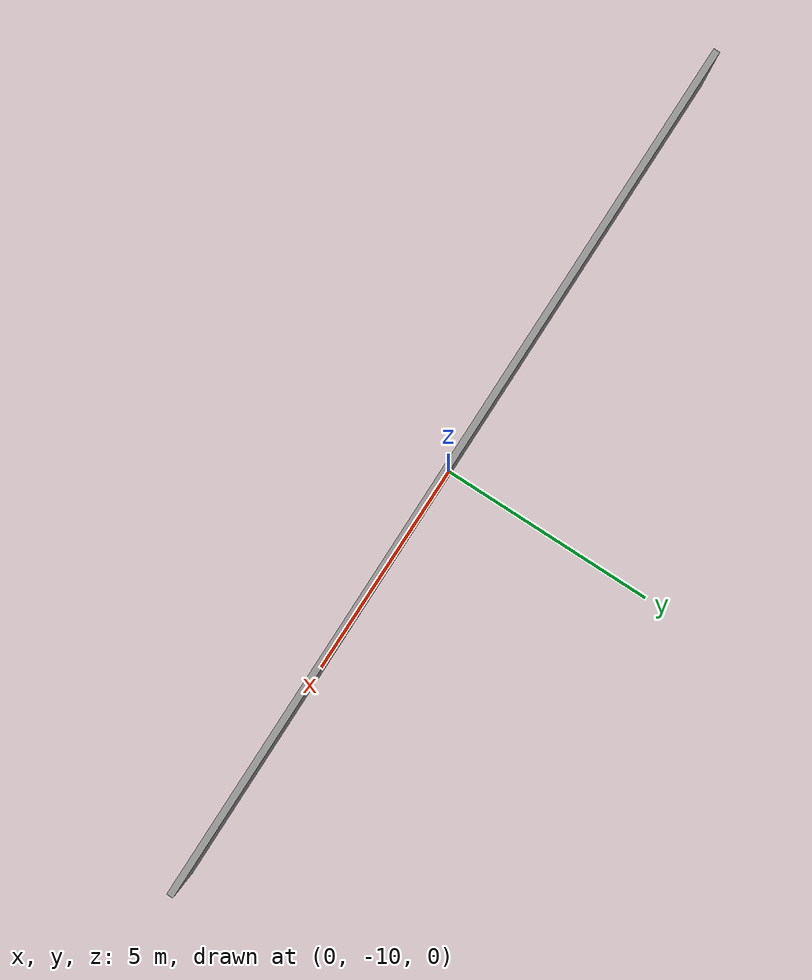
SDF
<?xml version='1.0'?>
<sdf version='1.6'>
  <model name='add_wall'>
    <pose frame=''>0 -10 0 0 -0 0</pose>
    <link name='Wall_11'>
      <collision name='Wall_11_Collision'>
        <geometry>
          <box>
            <size>20.15 0.15 2</size>
          </box>
        </geometry>
        <pose frame=''>0 0 1 0 -0 0</pose>
      </collision>
      <visual name='Wall_11_Visual'>
        <pose frame=''>0 0 1 0 -0 0</pose>
        <geometry>
          <box>
            <size>20.15 0.15 2</size>
          </box>
        </geometry>
        <material>
          <script>
            <uri>file://media/materials/scripts/gazebo.material</uri>
            <name>Gazebo/Grey</name>
          </script>
          <ambient>1 1 1 1</ambient>
        </material>
        <meta>
          <layer>0</layer>
        </meta>
      </visual>
      <pose frame=''>0 0 0 0 -0 3.14159</pose>
    </link>
    <static>1</static>
  </model>
</sdf>
